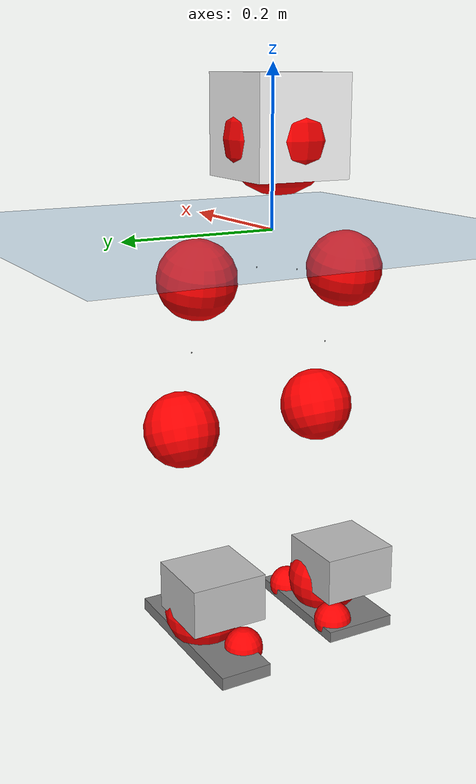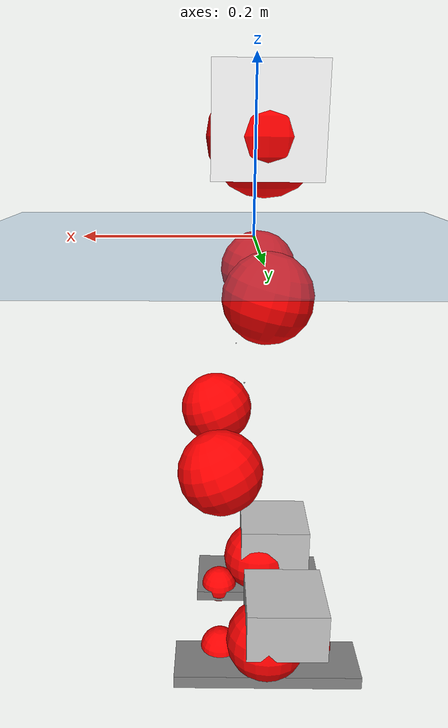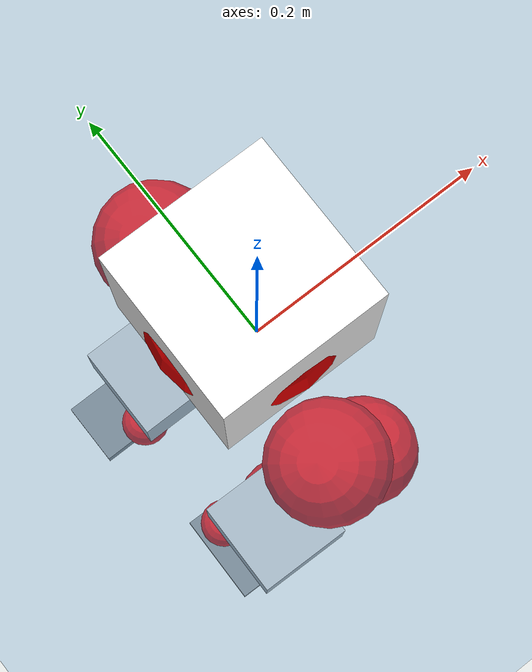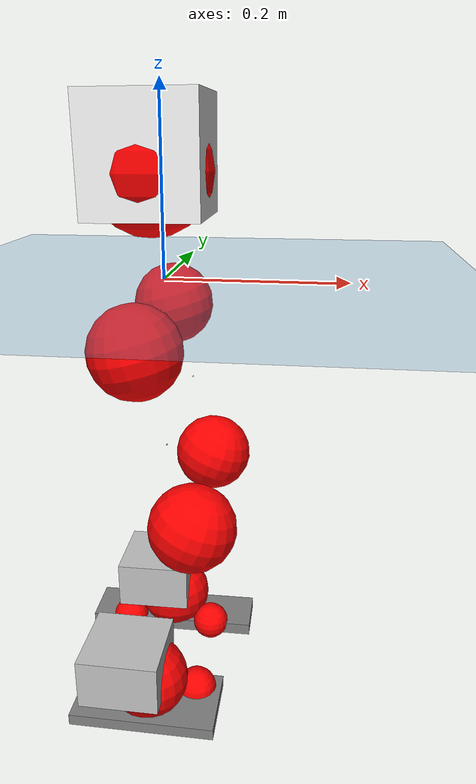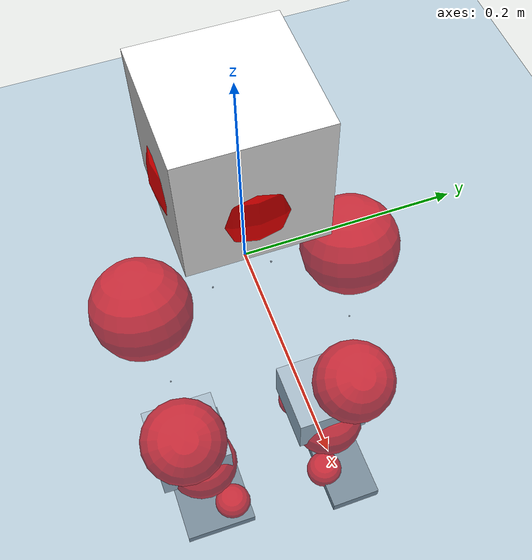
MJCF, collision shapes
<mujoco model="pi_12dof_release_v1">
  <compiler angle="radian" assetdir="assets" balanceinertia="true" inertiafromgeom="false"/>

  <option timestep="0.005" density="1.2" viscosity="2e-05"/>

  <size nkey="1"/>

  <visual>
    <quality shadowsize="8192"/>
    <map shadowclip="0.5"/>
  </visual>

  <default>
    <default class="/">
      <joint armature="0.01" damping="0.01" frictionloss="0.01"/>
      <geom contype="0" conaffinity="0" group="1" solref="-1000 -80"/>
      <site size="0.01 0.005 0.005" group="5"/>
      <general forcelimited="true" biastype="affine" gainprm="20" biasprm="0 -20 -0.5"/>
      <default class="foot">
        <geom size="0.0845 0.036 0.005" type="box" condim="6" group="4" priority="1" friction="0.9 0.2 0.2" solimp="0.015 1 0.005"/>
      </default>
      <default class="reward_collision_sphere">
        <geom group="5" rgba="1 0 0 1"/>
      </default>
    </default>
  </default>

  <asset>
    <texture type="skybox" colorspace="auto" name="//unnamed_texture_0" builtin="gradient" rgb1="0.95 0.95 0.95" rgb2="0.95 0.95 0.95" width="100" height="600"/>
    <texture type="2d" colorspace="auto" name="texplane" builtin="checker" rgb1="0.345 0.575 0.748" rgb2="0.345 0.575 0.748" markrgb="1 1 1" width="512" height="512"/>
    <material name="MatPlane" class="/" texture="texplane" texuniform="true" texrepeat="2 2" specular="0.9"/>
    <mesh name="baselink_1" class="/" file="baselink_1.STL"/>
    <mesh name="r_hip_pitch_link" class="/" file="r_hip_pitch_link.STL"/>
    <mesh name="r_hip_roll_link" class="/" file="r_hip_roll_link.STL"/>
    <mesh name="r_thigh_link" class="/" file="r_thigh_link.STL"/>
    <mesh name="r_calf_link" class="/" file="r_calf_link.STL"/>
    <mesh name="r_ankle_pitch_link" class="/" file="r_ankle_pitch_link.STL"/>
    <mesh name="r_ankle_roll_link" class="/" file="r_ankle_roll_link.STL"/>
    <mesh name="l_hip_pitch_link" class="/" file="l_hip_pitch_link.STL"/>
    <mesh name="l_hip_roll_link" class="/" file="l_hip_roll_link.STL"/>
    <mesh name="l_thigh_link" class="/" file="l_thigh_link.STL"/>
    <mesh name="l_calf_link" class="/" file="l_calf_link.STL"/>
    <mesh name="l_ankle_pitch_link" class="/" file="l_ankle_pitch_link.STL"/>
    <mesh name="l_ankle_roll_link" class="/" file="l_ankle_roll_link.STL"/>
  </asset>

  <worldbody>
    <geom name="floor" class="/" size="100 100 0.125" type="plane" group="0" material="MatPlane"/>
    <light name="toplight_shadow" class="/" pos="0 0 5" dir="0.0990148 0.0990148 -0.990148" type="directional" ambient="0.04 0.04 0.04" diffuse="0.55 0.55 0.55" specular="0.12 0.12 0.12"/>
    <light name="toplight_fill" class="/" pos="0 0 5" dir="0.0990148 0.0990148 -0.990148" type="directional" castshadow="false" ambient="0.04 0.04 0.04" diffuse="0.3 0.3 0.3" specular="0.08 0.08 0.08"/>
    <body name="trunk" pos="-0.010614 -0.00185233 0.00312616" quat="0.999989 -0.000560432 -0.00379827 -0.00251409">
      <inertial pos="0.0120172 -0.00306818 0.0614474" quat="0.693318 0.00773771 0.00909955 0.720533" mass="4.4202" diaginertia="0.00460155 0.0296455 0.0348059"/>
      <joint name="//unnamed_joint_0" type="free"/>
      <geom name="//unnamed_geom_1" class="/" type="mesh" density="0" rgba="1 1 1 1" mesh="baselink_1"/>
      <geom name="//unnamed_geom_2" class="/" size="0.0614421 0.0614421 0.0614421" pos="0 0 0.123614" type="box" rgba="1 1 1 1"/>
      <geom name="//unnamed_geom_3" class="reward_collision_sphere" size="0.0675863" pos="0 0 0.108162"/>
      <site name="imu" class="/" pos="-0.0088842 -0.0200083 -0.0437001" size="0.0122884"/>
      <camera name="track" class="/" pos="0 -2.55075 0" quat="0.707107 0.707107 0 0" mode="trackcom"/>
      <camera name="ego_camera" class="/" pos="0.0649486 0 0.27813" quat="-0.5 -0.5 0.5 0.5"/>
      <body name="r_hip_pitch_link" pos="0.0011598 -0.0286893 -0.0531097" quat="0.992302 -0.000498784 -0.123837 0.00114083">
        <inertial pos="0.00109514 -0.0643538 -0.000963566" quat="-0.0205462 0.707809 -0.0206808 0.705802" mass="0.714962" diaginertia="4.58933e-05 0.000316404 0.000729417"/>
        <joint name="r_hip_pitch_joint" class="/" pos="0 0 0" axis="-0.016049 -0.999865 -0.00358012" stiffness="0.00219329" range="-1.67959 1.26701" armature="0.0130865" damping="0" frictionloss="0.00839227"/>
        <geom name="//unnamed_geom_4" class="/" type="mesh" density="0" rgba="0.75294 0.75294 0.75294 1" mesh="r_hip_pitch_link"/>
        <geom name="//unnamed_geom_5" class="/" size="0.000614421 0.000614421 0.000614421" type="box" rgba="0.75294 0.75294 0.75294 1"/>
        <body name="r_hip_roll_link" pos="-0.00315563 -0.0698608 -0.00403252" quat="0.999992 -0.00132197 0.00161958 -0.00335091">
          <inertial pos="-0.00745454 0.00544464 -0.0850414" quat="0.705904 -0.0792357 -0.0825205 0.699007" mass="0.758518" diaginertia="0.00016803 0.00103462 0.00105111"/>
          <joint name="r_hip_roll_joint" class="/" pos="0 0 0" axis="-0.999498 -0.0224518 0.0223712" stiffness="0.0134167" range="-0.107256 0.618807" armature="0.0135073" damping="0.0490924" frictionloss="0.00763947"/>
          <geom name="//unnamed_geom_6" class="/" type="mesh" density="0" rgba="0.75294 0.75294 0.75294 1" mesh="r_hip_roll_link"/>
          <geom name="//unnamed_geom_7" class="/" size="0.000614421 0.000614421 0.000614421" type="box" rgba="0.75294 0.75294 0.75294 1"/>
          <geom name="//unnamed_geom_8" class="reward_collision_sphere" size="0.0491537"/>
          <body name="r_thigh_link" pos="0.00168452 0.00918648 -0.10519" quat="0.999997 0.00176232 0.000203239 -0.00171675">
            <inertial pos="0.00741816 0.000124502 -0.0789562" quat="0.740789 0.671677 0.0043183 -0.00794579" mass="0.204697" diaginertia="5.54892e-05 0.000257938 0.000435214"/>
            <joint name="r_thigh_joint" class="/" pos="0 0 0" axis="-0.00735248 -0.00441806 -0.999963" stiffness="0.0213996" range="-0.16073 0.501195" armature="0.0147742" damping="0.00647222" frictionloss="0.0188568"/>
            <geom name="//unnamed_geom_9" class="/" type="mesh" density="0" rgba="0.75294 0.75294 0.75294 1" mesh="r_thigh_link"/>
            <geom name="//unnamed_geom_10" class="/" size="0.000614421 0.000614421 0.000614421" type="box" rgba="0.75294 0.75294 0.75294 1"/>
            <body name="r_calf_link" pos="0.00170765 -0.00400028 -0.0991597" quat="0.94704 -0.00272497 0.321103 -0.000621578">
              <inertial pos="-0.00404731 0.00687404 -0.109638" quat="0.999246 -0.0313488 0.0199117 -0.0112858" mass="1.53325" diaginertia="0.00195099 0.0123796 0.0017231"/>
              <joint name="r_calf_joint" class="/" pos="0 0 0" axis="-0.0298203 -0.999187 -0.027149" stiffness="0.0390884" range="-1.85242 0.620379" armature="0.0119025" damping="0.00952036" frictionloss="0.00823848"/>
              <geom name="//unnamed_geom_11" class="/" type="mesh" density="0" rgba="0.75294 0.75294 0.75294 1" mesh="r_calf_link"/>
              <geom name="//unnamed_geom_12" class="/" size="0.000614421 0.000614421 0.000614421" type="box" rgba="0.75294 0.75294 0.75294 1"/>
              <geom name="//unnamed_geom_13" class="reward_collision_sphere" size="0.0491537"/>
              <body name="r_ankle_pitch_link" pos="-0.000773095 0.0106377 -0.214765" quat="0.980157 0.000899211 -0.19822 -3.79633e-05">
                <inertial pos="-9.84924e-05 0.0110605 -0.00182322" quat="-0.00294333 0.716234 -0.0243191 0.69743" mass="0.318976" diaginertia="0.000152633 0.000791158 0.000994447"/>
                <joint name="r_ankle_pitch_joint" class="/" pos="0 0 0" axis="0.0345974 -0.99891 -0.0313445" range="-1.35649 0.498378" armature="0.0133248" damping="0.0354565" frictionloss="0.00966408"/>
                <geom name="//unnamed_geom_14" class="/" type="mesh" density="0" rgba="0.75294 0.75294 0.75294 1" mesh="r_ankle_pitch_link"/>
                <geom name="//unnamed_geom_15" class="/" size="0.0479248 0.0491537 0.030721" type="box" rgba="0.75294 0.75294 0.75294 1"/>
                <body name="r_ankle_roll_link" pos="0.0664111 0.0109214 0.00214303" quat="1 -0.00025728 0.00011357 0.000462509">
                  <inertial pos="-0.0216638 0.00232177 -0.0212626" quat="0.587 0.403682 0.444562 0.542988" mass="0.932601" diaginertia="0.000549995 0.00343959 0.00266632"/>
                  <joint name="r_ankle_roll_joint" class="/" pos="0 0 0" axis="-0.998761 -0.0169803 0.0467672" range="0.0294657 0.19494" armature="0.0070005" damping="0" frictionloss="0.0115712"/>
                  <geom name="//unnamed_geom_16" class="/" type="mesh" density="0" rgba="0.75294 0.75294 0.75294 1" mesh="r_ankle_roll_link"/>
                  <geom name="//unnamed_geom_17" class="/" type="mesh" rgba="0.75294 0.75294 0.75294 1" mesh="r_ankle_roll_link"/>
                  <geom name="right_foot" class="foot" size="0.0883918 0.0473305 0.00703277" pos="-0.0441651 0 -0.0679874"/>
                  <geom name="//unnamed_geom_19" class="reward_collision_sphere" size="0.0491537" pos="-0.0432991 0 -0.0309034"/>
                  <geom name="//unnamed_geom_20" class="reward_collision_sphere" size="0.0245768" pos="0.0129897 0.0255075 -0.0618068"/>
                  <geom name="//unnamed_geom_21" class="reward_collision_sphere" size="0.0245768" pos="-0.103918 0.0255075 -0.0618068"/>
                  <site name="right_foot" class="foot" pos="-0.0441651 0 -0.0679874" size="0.0122884"/>
                </body>
              </body>
            </body>
          </body>
        </body>
      </body>
      <body name="l_hip_pitch_link" pos="-0.00231592 0.0310688 -0.0447017" quat="0.992225 0.000524181 -0.124451 0.000975801">
        <inertial pos="-0.00119689 0.0596872 0.00594687" quat="-0.077291 0.730795 0.0243072 0.677771" mass="0.639949" diaginertia="6.40783e-05 0.000347966 0.000791818"/>
        <joint name="l_hip_pitch_joint" class="/" pos="0 0 0" axis="0.044219 0.998631 0.0279426" stiffness="0.00775858" range="-1.27707 1.75909" armature="0.0128005" damping="0" frictionloss="0.0124005"/>
        <geom name="//unnamed_geom_22" class="/" type="mesh" density="0" rgba="0.75294 0.75294 0.75294 1" mesh="l_hip_pitch_link"/>
        <geom name="//unnamed_geom_23" class="/" size="0.000614421 0.000614421 0.000614421" type="box" rgba="0.75294 0.75294 0.75294 1"/>
        <body name="l_hip_roll_link" pos="-0.00072857 0.0805247 -0.0085517" quat="1 -6.44695e-05 -0.000624022 0.000174442">
          <inertial pos="-0.00063851 0.000822669 -0.0930914" quat="0.695087 -0.0733906 -0.0731316 0.711421" mass="0.62867" diaginertia="0.000165039 0.000940623 0.00104993"/>
          <joint name="l_hip_roll_joint" class="/" pos="0 0 0" axis="-0.999978 -0.00343383 0.00575997" stiffness="0.0537204" range="-0.528752 -0.0243025" armature="0.0138375" damping="0" frictionloss="0.0132367"/>
          <geom name="//unnamed_geom_24" class="/" type="mesh" density="0" rgba="0.75294 0.75294 0.75294 1" mesh="l_hip_roll_link"/>
          <geom name="//unnamed_geom_25" class="/" size="0.000614421 0.000614421 0.000614421" type="box" rgba="0.75294 0.75294 0.75294 1"/>
          <geom name="//unnamed_geom_26" class="reward_collision_sphere" size="0.0491537"/>
          <body name="l_thigh_link" pos="-0.0016277 -0.00273072 -0.0978119" quat="1 0.000109848 -1.46515e-05 4.05359e-05">
            <inertial pos="0.00167583 -0.0116506 -0.0727206" quat="0.66681 0.745075 0.000759293 0.0150551" mass="0.20496" diaginertia="6.28257e-05 0.000321455 0.000566266"/>
            <joint name="l_thigh_joint" class="/" pos="0 0 0" axis="0.00337402 0.00677823 -0.999971" range="-0.568335 0.180596" armature="0.0102382" damping="0.0456805" frictionloss="0.00999124"/>
            <geom name="//unnamed_geom_27" class="/" type="mesh" density="0" rgba="0.75294 0.75294 0.75294 1" mesh="l_thigh_link"/>
            <geom name="//unnamed_geom_28" class="/" size="0.000614421 0.000614421 0.000614421" type="box" rgba="0.75294 0.75294 0.75294 1"/>
            <body name="l_calf_link" pos="-0.00247226 0.00349112 -0.109947" quat="0.946294 0.00132437 0.3233 0.00191705">
              <inertial pos="-0.00974321 -0.00151037 -0.0978806" quat="0.999411 0.00832099 0.00151062 0.0332733" mass="1.50192" diaginertia="0.00168396 0.0115596 0.00150749"/>
              <joint name="l_calf_joint" class="/" pos="0 0 0" axis="-0.000759324 0.999815 0.019229" stiffness="0.000376585" range="-0.675115 1.74125" armature="0.0118309" damping="0.0151014" frictionloss="0.0170905"/>
              <geom name="//unnamed_geom_29" class="/" type="mesh" density="0" rgba="0.75294 0.75294 0.75294 1" mesh="l_calf_link"/>
              <geom name="//unnamed_geom_30" class="/" size="0.000614421 0.000614421 0.000614421" type="box" rgba="0.75294 0.75294 0.75294 1"/>
              <geom name="//unnamed_geom_31" class="reward_collision_sphere" size="0.0491537"/>
              <body name="l_ankle_pitch_link" pos="0.00128135 -0.00139819 -0.206348" quat="0.980076 -4.77139e-05 -0.198621 -7.78043e-06">
                <inertial pos="0.00255596 -0.000381778 0.000376992" quat="-0.00211396 0.705817 -0.00442885 0.708377" mass="0.356839" diaginertia="0.000147376 0.00069535 0.00105586"/>
                <joint name="l_ankle_pitch_joint" class="/" pos="0 0 0" axis="-0.0123919 0.999912 -0.0046346" stiffness="0.0204124" range="-0.505979 1.34839" armature="0.0126893" damping="0.00733728" frictionloss="0.010607"/>
                <geom name="//unnamed_geom_32" class="/" type="mesh" density="0" rgba="0.75294 0.75294 0.75294 1" mesh="l_ankle_pitch_link"/>
                <geom name="//unnamed_geom_33" class="/" size="0.0479248 0.0491537 0.030721" type="box" rgba="0.75294 0.75294 0.75294 1"/>
                <body name="l_ankle_roll_link" pos="0.0651133 0.00227672 -0.00433409" quat="0.999999 -0.000558985 -0.000944806 0.00039458">
                  <inertial pos="-0.0146017 0.00103475 -0.0245627" quat="0.543406 0.436982 0.440795 0.565205" mass="0.93838" diaginertia="0.000536866 0.00354991 0.00226049"/>
                  <joint name="l_ankle_roll_joint" class="/" pos="0 0 0" axis="-0.998831 0.0462947 -0.0138975" stiffness="0.0392737" range="-0.166927 0.0947741" armature="0.0131117" damping="0" frictionloss="0.0136601"/>
                  <geom name="//unnamed_geom_34" class="/" type="mesh" density="0" rgba="0.75294 0.75294 0.75294 1" mesh="l_ankle_roll_link"/>
                  <geom name="//unnamed_geom_35" class="/" type="mesh" rgba="0.75294 0.75294 0.75294 1" mesh="l_ankle_roll_link"/>
                  <geom name="left_foot" class="foot" size="0.113396 0.0332047 0.00794181" pos="-0.0441651 0 -0.0679874"/>
                  <geom name="//unnamed_geom_37" class="reward_collision_sphere" size="0.0491537" pos="-0.0432991 0 -0.0309034"/>
                  <geom name="//unnamed_geom_38" class="reward_collision_sphere" size="0.0245768" pos="0.0129897 -0.0255075 -0.0618068"/>
                  <geom name="//unnamed_geom_39" class="reward_collision_sphere" size="0.0245768" pos="-0.103918 -0.0255075 -0.0618068"/>
                  <site name="left_foot" class="foot" pos="-0.0441651 0 -0.0679874" size="0.0122884"/>
                </body>
              </body>
            </body>
          </body>
        </body>
      </body>
    </body>
  </worldbody>

  <contact>
    <pair class="/" geom1="floor" geom2="right_foot" name="//unnamed_contact_1"/>
    <pair class="/" geom1="floor" geom2="left_foot" name="//unnamed_contact_0"/>
  </contact>

  <actuator>
    <general name="r_hip_pitch_joint" class="/" joint="r_hip_pitch_joint" forcerange="-24.3216 24.3216" gainprm="25.9045" biasprm="0 -25.9045 -0.581041"/>
    <general name="r_hip_roll_joint" class="/" joint="r_hip_roll_joint" forcerange="-21.2779 21.2779" gainprm="25.9045" biasprm="0 -25.9045 -0.581041"/>
    <general name="r_thigh_joint" class="/" joint="r_thigh_joint" forcerange="-25.0883 25.0883" gainprm="25.9045" biasprm="0 -25.9045 -0.581041"/>
    <general name="r_calf_joint" class="/" joint="r_calf_joint" forcerange="-15.793 15.793" gainprm="25.9045" biasprm="0 -25.9045 -0.581041"/>
    <general name="r_ankle_pitch_joint" class="/" joint="r_ankle_pitch_joint" forcerange="-26.2713 26.2713" gainprm="25.9045" biasprm="0 -25.9045 -0.581041"/>
    <general name="r_ankle_roll_joint" class="/" joint="r_ankle_roll_joint" forcerange="-34.2671 34.2671" gainprm="25.9045" biasprm="0 -25.9045 -0.581041"/>
    <general name="l_hip_pitch_joint" class="/" joint="l_hip_pitch_joint" forcerange="-26.8078 26.8078" gainprm="25.9045" biasprm="0 -25.9045 -0.581041"/>
    <general name="l_hip_roll_joint" class="/" joint="l_hip_roll_joint" forcerange="-29.5179 29.5179" gainprm="25.9045" biasprm="0 -25.9045 -0.581041"/>
    <general name="l_thigh_joint" class="/" joint="l_thigh_joint" forcerange="-24.5088 24.5088" gainprm="25.9045" biasprm="0 -25.9045 -0.581041"/>
    <general name="l_calf_joint" class="/" joint="l_calf_joint" forcerange="-24.1274 24.1274" gainprm="25.9045" biasprm="0 -25.9045 -0.581041"/>
    <general name="l_ankle_pitch_joint" class="/" joint="l_ankle_pitch_joint" forcerange="-22.1956 22.1956" gainprm="25.9045" biasprm="0 -25.9045 -0.581041"/>
    <general name="l_ankle_roll_joint" class="/" joint="l_ankle_roll_joint" forcerange="-24.3987 24.3987" gainprm="25.9045" biasprm="0 -25.9045 -0.581041"/>
  </actuator>

  <sensor>
    <gyro site="imu" name="imu_angular_velocity"/>
    <velocimeter site="imu" name="imu_linear_velocity"/>
    <framelinvel objtype="site" objname="left_foot" name="left_foot_global_linear_velocity"/>
    <framelinvel objtype="site" objname="right_foot" name="right_foot_global_linear_velocity"/>
  </sensor>

  <keyframe>
    <key name="home" qpos="0 0 0.291 1 0 0 0 0.4 0 0 -0.8 0.4 0 -0.4 0 0 0.8 -0.4 0"/>
  </keyframe>
</mujoco>
